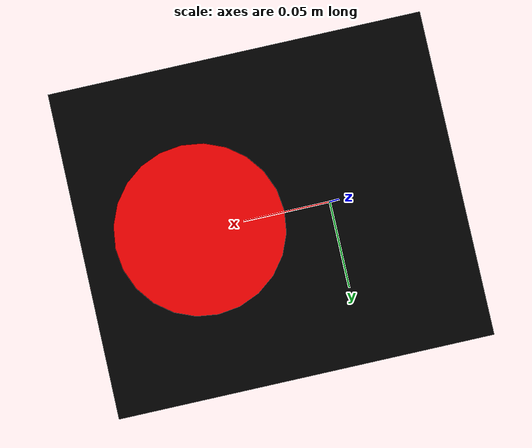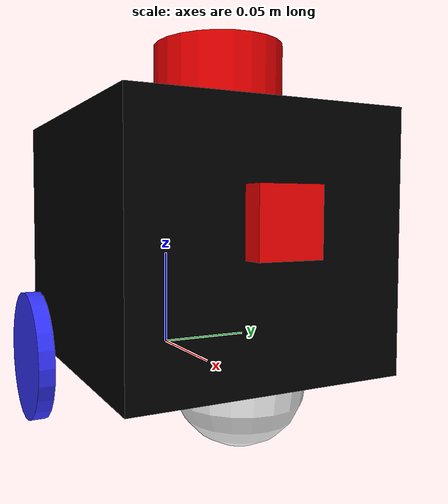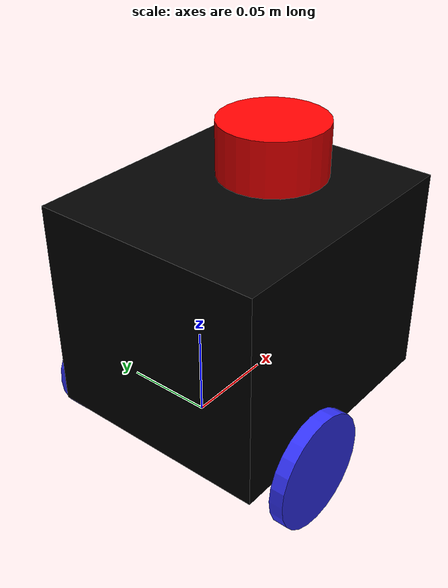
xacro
<?xml version="1.0"?>
<robot xmlns:xacro="http://www.ros.org/wiki/xacro"  name="robot">

    <xacro:arg name="use_ros2_control" default="true"/>
    <xacro:arg name="sim_mode" default="true"/>

    <xacro:include filename="robot_core.xacro" />

    <xacro:if value="$(arg use_ros2_control)">
        <xacro:include filename="ros2_control.xacro" />
    </xacro:if>
    <xacro:unless value="$(arg use_ros2_control)">
        <xacro:include filename="gazebo_control.xacro" />
    </xacro:unless>
    <xacro:include filename="lidar.xacro" />
    <xacro:include filename="camera.xacro" />

</robot>

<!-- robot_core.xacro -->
<robot xmlns:xacro="http://www.ros.org/wiki/xacro" >

    <xacro:include filename="inertial_macros.xacro" />

    <!--COLORS-->

    <material name="white">
        <color rgba="1 1 1 1" />
    </material>

    <material name="orange">
        <color rgba="1 0.3 0.1 1" />
    </material>

    <material name="blue">
        <color rgba="0.2 0.2 1 1" />
    </material>

    <material name="black">
        <color rgba="0 0 0 1" />
    </material>

    <material name="red">
        <color rgba="1 0 0 1" />
    </material>

    <!--BASE LINK (standard to do in ROS)-->

    <link name="base_link">

    </link>

    <!--BASE FOOTPRINT LINK-->

    <joint name="base_footprint_joint" type="fixed">
        <parent link="base_link"/>
        <child link="base_footprint"/>
        <origin xyz="0 0 0" rpy="0 0 0"/>
    </joint>

    <link name="base_footprint">

    </link>

    <!--CHASSIS LINK-->

    <joint name="chassis_joint" type="fixed">
        <parent link="base_link" />
        <child link="chassis" />
        <origin xyz="-0.040 0 0" />
    </joint>

    <link name="chassis">
        <visual>
            <origin xyz="0.075 0 0.060" />
            <geometry>
                <box size="0.15 0.13 0.12"/>
            </geometry>
            <material name="black"/>
        </visual>
        <collision>
            <origin xyz="0.075 0 0.060" />
            <geometry>
                <box size="0.15 0.13 0.12"/>
            </geometry>
        </collision>
        <xacro:inertial_box mass="0.5" x="0.15" y="0.13" z="0.12">
            <origin xyz="0.075 0 0.060" rpy="0 0 0"/>
        </xacro:inertial_box>
    </link>

    <gazebo reference="chassis">
        <material>Gazebo/Black</material>
    </gazebo>

    <!--LEFT WHEEL LINK-->

    <joint name="left_wheel_joint" type="continuous">
        <parent link="base_link"/>
        <child link="left_wheel"/>
        <origin xyz="0 0.075 0" rpy="-${pi/2} 0 0"/>
        <axis xyz="0 0 1"/>
    </joint>

    <link name="left_wheel">
        <visual>
            <geometry>
                <cylinder radius="0.0325" length="0.008"/>
            </geometry>
            <material name="blue" />
        </visual>
        <collision>
            <geometry>
                <cylinder radius="0.0325" length="0.008"/>
            </geometry>
        </collision>
        <xacro:inertial_cylinder mass="0.1" length="0.008" radius="0.0325">
            <origin xyz="0 0 0" rpy="0 0 0"/>
        </xacro:inertial_cylinder>
    </link>

    <gazebo reference="left_wheel">
        <material>Gazebo/Blue</material>
    </gazebo>

    <!--RIGHT WHEEL LINK-->

    <joint name="right_wheel_joint" type="continuous">
        <parent link="base_link"/>
        <child link="right_wheel"/>
        <origin xyz="0 -0.075 0" rpy="${pi/2} 0 0"/>
        <axis xyz="0 0 -1"/>
    </joint>

    <link name="right_wheel">
        <visual>
            <geometry>
                <cylinder radius="0.0325" length="0.008"/>
            </geometry>
            <material name="blue" />
        </visual>
        <collision>
            <geometry>
                <cylinder radius="0.0325" length="0.008"/>
            </geometry>
        </collision>
        <xacro:inertial_cylinder mass="0.1" length="0.008" radius="0.0325">
            <origin xyz="0 0 0" rpy="0 0 0"/>
        </xacro:inertial_cylinder>
    </link>

    <gazebo reference="right_wheel">
        <material>Gazebo/Blue</material>
    </gazebo>

    <!--CASTER WHEEL LINK-->

    <joint name="caster_wheel_joint" type="fixed">
        <parent link="chassis"/>
        <child link="caster_wheel"/>
        <origin xyz="0.12 0 0" />
    </joint>

    <link name="caster_wheel">
        <visual>
            <geometry>
                <sphere radius="0.03"/>
            </geometry>
            <material name="white"/>
        </visual>
        <collision>
            <geometry>
                <sphere radius="0.03"/>
            </geometry>
        </collision>
        <xacro:inertial_sphere mass="0.1" radius="0.03">
            <origin xyz="0 0 0" rpy="0 0 0"/>
        </xacro:inertial_sphere>
    </link>

    <gazebo reference="caster_wheel">
        <material>Gazebo/White</material>
        <mu1 value="0.001"/>
        <mu2 value="0.001"/>
    </gazebo>

</robot>

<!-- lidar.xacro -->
<robot xmlns:xacro="http://www.ros.org/wiki/xacro"  name="robot">

    <joint name="laser_joint" type="fixed">
        <parent link="chassis"/>
        <child link="laser_frame"/>
        <origin xyz="0.1 0 0.13" rpy="0 0 0"/>
    </joint>

    <link name="laser_frame">
        <visual>
            <geometry>
                <cylinder radius="0.03" length="0.04"/>
            </geometry>
            <material name="red" />
        </visual>
        <collision>
            <geometry>
                <cylinder radius="0.03" length="0.01"/>
            </geometry>
        </collision>
        <xacro:inertial_cylinder mass="0.1" length="0.01" radius="0.03">
            <origin xyz="0 0 0" rpy="0 0 0"/>
        </xacro:inertial_cylinder>
    </link>

    <gazebo reference="laser_frame">
        <material> Gazebo/Red</material>
        <sensor name ="laser" type="gpu_lidar">
            <pose> 0 0 0 0 0 0 </pose>
            <visualize>false</visualize>
            <update_rate>10</update_rate>
            <lidar>
                <scan>
                    <horizontal>
                        <samples>360</samples>
                        <min_angle>-3.14</min_angle>
                        <max_angle>3.14</max_angle>
                    </horizontal>
                </scan>
                <range>
                    <min>0.3</min>
                    <max>12</max>
                </range>
            </lidar>
            <topic>scan</topic>
            <gz_frame_id>laser_frame</gz_frame_id>
        </sensor>
    </gazebo>

</robot>

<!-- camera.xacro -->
<robot xmlns:xacro="http://www.ros.org/wiki/xacro"  name="robot">

    <joint name="camera_joint" type="fixed">
        <parent link="chassis"/>
        <child link="camera_link"/>
        <origin xyz="0.155 0 0.07" rpy="0 0 0"/>
    </joint>

    <link name="camera_link">
        <visual>
            <geometry>
                <box size="0.010 0.030 0.030"/>
            </geometry>
            <material name="red" />
        </visual>
    </link>

    <joint name="camera_optical_joint" type="fixed">
        <parent link="camera_link"/>
        <child link="camera_link_optical"/>
        <origin xyz="0 0 0" rpy="${-pi/2} 0 ${-pi/2}"/>
    </joint>

    <link name="camera_link_optical"></link>

    <gazebo reference="camera_link">
        <material> Gazebo/Red</material>
        <sensor name ="camera" type="camera">
            <pose> 0 0 0 0 0 0 </pose>
            <visualize>true</visualize>
            <always_on>true</always_on>
            <update_rate>10</update_rate>
            <camera>
                <camera_info_topic>camera/camera_info</camera_info_topic>
                <horizontal_fov>1.089</horizontal_fov>
                <image>
                    <format>R8G8B8</format>
                    <width>640</width>
                    <height>480</height>
                </image>
                <clip>
                    <near>0.05</near>
                    <far>8.0</far>
                </clip>
            </camera>
            <topic>camera/image_raw</topic>
            <gz_frame_id>camera_link_optical</gz_frame_id>
        </sensor>
    </gazebo>

</robot>
